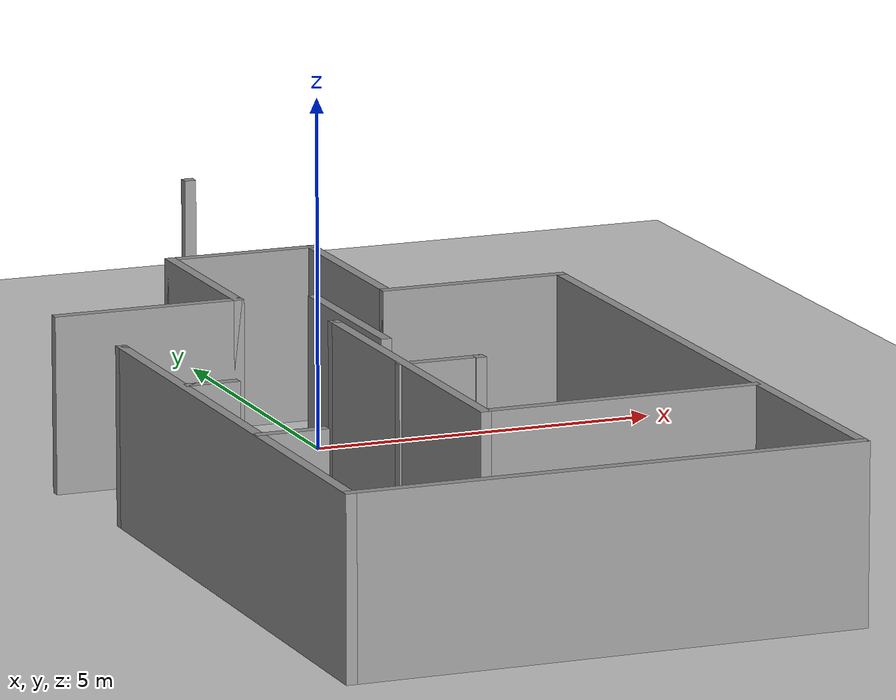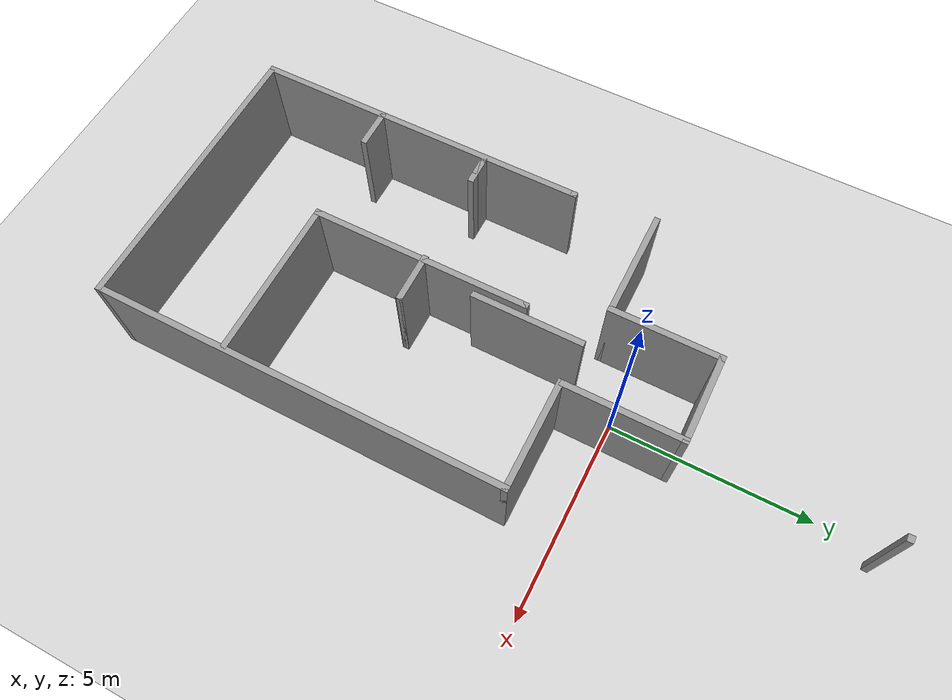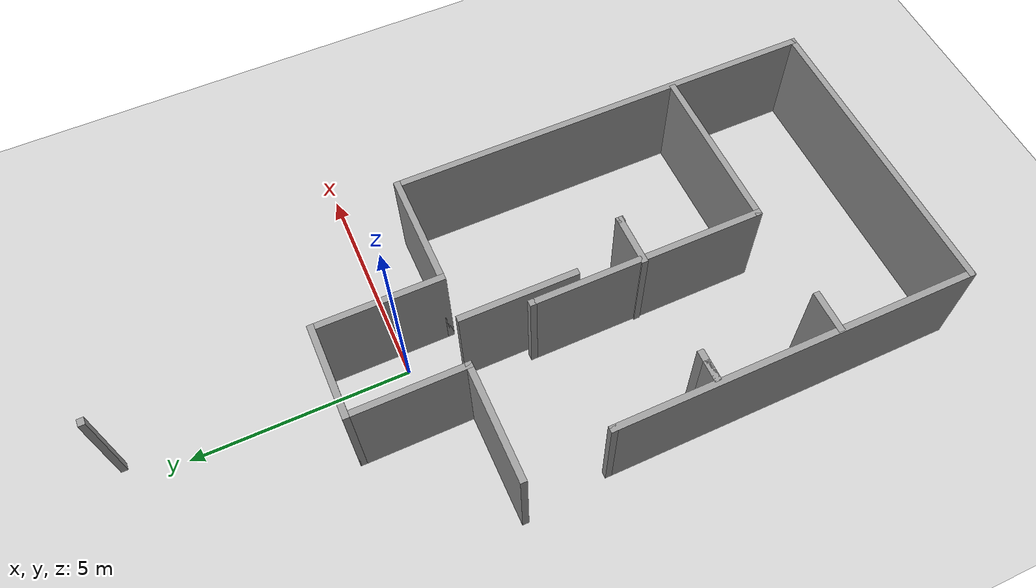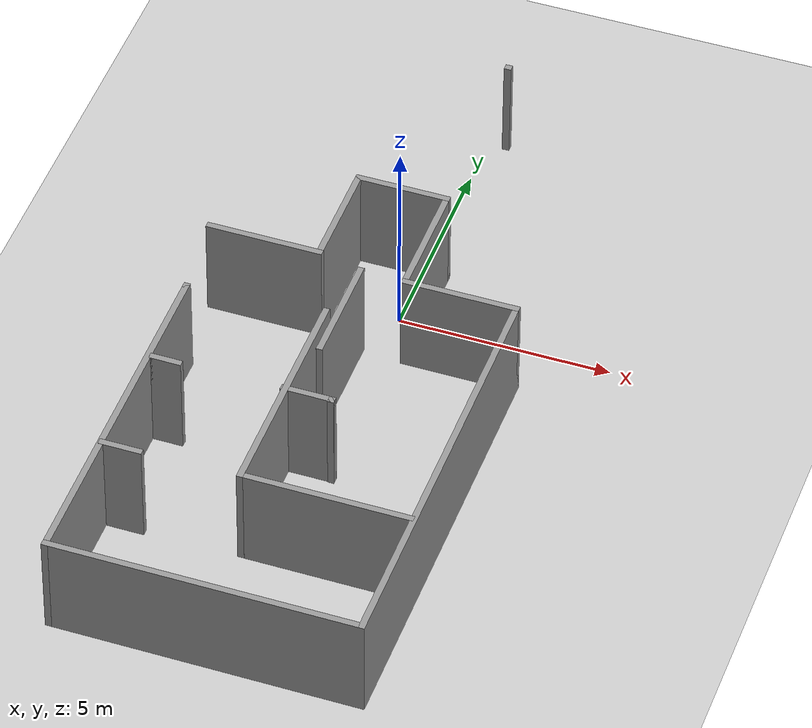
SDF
<sdf version="1.6">
 <world name="default">
  <scene><ambient>0.4 0.4 0.4 1</ambient><background>0.7 0.7 0.7 1</background><shadows>1</shadows></scene>
  <light name="sun" type="directional">
   <pose>0 0 10 0 -0 0</pose>
   <diffuse>0.8 0.8 0.8 1</diffuse>
   <specular>0.2 0.2 0.2 1</specular>
   <attenuation>
    <range>1000</range>
    <constant>0.9</constant>
    <linear>0.01</linear>
    <quadratic>0.001</quadratic>
   </attenuation>
   <direction>-0.5 0.1 -0.9</direction>
  </light>
  <model name="ground_plane">
   <static>1</static>
   <link name="link">
    <collision name="collision">
     <geometry><plane><normal>0 0 1</normal><size>100 100</size></plane></geometry>
     <surface>
      <contact><collide_bitmask>65535</collide_bitmask></contact>
      <friction><ode><mu>100</mu><mu2>50</mu2></ode></friction>
     </surface>
    </collision>
    <visual name="visual">
     <cast_shadows>0</cast_shadows>
     <geometry><plane><normal>0 0 1</normal><size>100 100</size></plane></geometry>
     <material>
      <script><uri>file://media/materials/scripts/gazebo.material</uri><name>Gazebo/Grey</name></script>
     </material>
    </visual>
   </link>
  </model>
  <model name="Untitled">
   <pose>-0.5 -2.5 0 0 0 -1.57</pose>
   <link name="Wall_1">
    <collision name="Wall_1_Collision">
     <geometry><box><size>0.17 0.15 2.5</size></box></geometry>
     <pose>0 0 1.25 0 -0 0</pose>
    </collision>
    <visual name="Wall_1_Visual">
     <pose>0 0 1.25 0 -0 0</pose>
     <geometry><box><size>0.17 0.15 2.5</size></box></geometry>
     <material>
      <script><uri>file://media/materials/scripts/gazebo.material</uri><name>Gazebo/Grey</name></script>
      <ambient>0 0 0 1</ambient>
     </material>
     <meta><layer>0</layer></meta>
    </visual>
    <pose>-8.81 0.94 0 0 -0 -1.5708</pose>
   </link>
   <link name="Wall_10">
    <collision name="Wall_10_Collision">
     <geometry><box><size>10.25 0.15 2.5</size></box></geometry>
     <pose>0 0 1.25 0 -0 0</pose>
    </collision>
    <visual name="Wall_10_Visual">
     <pose>0 0 1.25 0 -0 0</pose>
     <geometry><box><size>10.25 0.15 2.5</size></box></geometry>
     <material>
      <script><uri>file://media/materials/scripts/gazebo.material</uri><name>Gazebo/Grey</name></script>
      <ambient>1 1 1 1</ambient>
     </material>
     <meta><layer>0</layer></meta>
    </visual>
    <pose>3.76 3.65 0 0 -0 0</pose>
   </link>
   <link name="Wall_11">
    <collision name="Wall_11_Collision">
     <geometry><box><size>7.25 0.15 2.5</size></box></geometry>
     <pose>0 0 1.25 0 -0 0</pose>
    </collision>
    <visual name="Wall_11_Visual">
     <pose>0 0 1.25 0 -0 0</pose>
     <geometry><box><size>7.25 0.15 2.5</size></box></geometry>
     <material>
      <script><uri>file://media/materials/scripts/gazebo.material</uri><name>Gazebo/Grey</name></script>
      <ambient>1 1 1 1</ambient>
     </material>
     <meta><layer>0</layer></meta>
    </visual>
    <pose>8.81 0.1 0 0 -0 -1.5708</pose>
   </link>
   <link name="Wall_12">
    <collision name="Wall_12_Collision">
     <geometry><box><size>8.5 0.15 2.5</size></box></geometry>
     <pose>0 0 1.25 0 -0 0</pose>
    </collision>
    <visual name="Wall_12_Visual">
     <pose>0 0 1.25 0 -0 0</pose>
     <geometry><box><size>8.5 0.15 2.5</size></box></geometry>
     <material>
      <script><uri>file://media/materials/scripts/gazebo.material</uri><name>Gazebo/Grey</name></script>
      <ambient>1 1 1 1</ambient>
     </material>
     <meta><layer>0</layer></meta>
    </visual>
    <pose>4.635 -3.45 0 0 -0 3.14159</pose>
   </link>
   <link name="Wall_13">
    <collision name="Wall_13_Collision">
     <geometry><box><size>0.15 0.15 2.5</size></box></geometry>
     <pose>0 0 1.25 0 -0 0</pose>
    </collision>
    <visual name="Wall_13_Visual">
     <pose>0 0 1.25 0 -0 0</pose>
     <geometry><box><size>0.15 0.15 2.5</size></box></geometry>
     <material>
      <script><uri>file://media/materials/scripts/gazebo.material</uri><name>Gazebo/Grey</name></script>
      <ambient>1 1 1 1</ambient>
     </material>
     <meta><layer>0</layer></meta>
    </visual>
    <pose>0.459999 -3.45 0 0 -0 0</pose>
   </link>
   <link name="Wall_15">
    <collision name="Wall_15_Collision">
     <geometry><box><size>4 0.15 2.5</size></box></geometry>
     <pose>0 0 1.25 0 -0 0</pose>
    </collision>
    <visual name="Wall_15_Visual">
     <pose>0 0 1.25 0 -0 0</pose>
     <geometry><box><size>4 0.15 2.5</size></box></geometry>
     <material>
      <script><uri>file://media/materials/scripts/gazebo.material</uri><name>Gazebo/Grey</name></script>
      <ambient>1 1 1 1</ambient>
     </material>
     <meta><layer>0</layer></meta>
    </visual>
    <pose>5.53257 1.6473 0 0 -0 -1.5708</pose>
   </link>
   <link name="Wall_16">
    <collision name="Wall_16_Collision">
     <geometry><box><size>5.5 0.15 2.5</size></box></geometry>
     <pose>0 0 1.25 0 -0 0</pose>
    </collision>
    <visual name="Wall_16_Visual">
     <pose>0 0 1.25 0 -0 0</pose>
     <geometry><box><size>5.5 0.15 2.5</size></box></geometry>
     <material>
      <script><uri>file://media/materials/scripts/gazebo.material</uri><name>Gazebo/Grey</name></script>
      <ambient>1 1 1 1</ambient>
     </material>
     <meta><layer>0</layer></meta>
    </visual>
    <pose>2.85757 -0.277703 0 0 -0 3.14159</pose>
   </link>
   <link name="Wall_17">
    <collision name="Wall_17_Collision">
     <geometry><box><size>0.15 0.15 2.5</size></box></geometry>
     <pose>0 0 1.25 0 -0 0</pose>
    </collision>
    <visual name="Wall_17_Visual">
     <pose>0 0 1.25 0 -0 0</pose>
     <geometry><box><size>0.15 0.15 2.5</size></box></geometry>
     <material>
      <script><uri>file://media/materials/scripts/gazebo.material</uri><name>Gazebo/Grey</name></script>
      <ambient>1 1 1 1</ambient>
     </material>
     <meta><layer>0</layer></meta>
    </visual>
    <pose>0.182568 -0.277703 0 0 -0 0</pose>
   </link>
   <link name="Wall_19">
    <collision name="Wall_19_Collision">
     <geometry><box><size>1.25 0.15 2.5</size></box></geometry>
     <pose>0 0 1.25 0 -0 0</pose>
    </collision>
    <visual name="Wall_19_Visual">
     <pose>0 0 1.25 0 -0 0</pose>
     <geometry><box><size>1.25 0.15 2.5</size></box></geometry>
     <material>
      <script><uri>file://media/materials/scripts/gazebo.material</uri><name>Gazebo/Grey</name></script>
      <ambient>1 1 1 1</ambient>
     </material>
     <meta><layer>0</layer></meta>
    </visual>
    <pose>2.73955 0.238668 0 0 -0 1.5708</pose>
   </link>
   <link name="Wall_20">
    <collision name="Wall_20_Collision">
     <geometry><box><size>0.16 0.15 2.5</size></box></geometry>
     <pose>0 0 1.25 0 -0 0</pose>
    </collision>
    <visual name="Wall_20_Visual">
     <pose>0 0 1.25 0 -0 0</pose>
     <geometry><box><size>0.16 0.15 2.5</size></box></geometry>
     <material>
      <script><uri>file://media/materials/scripts/gazebo.material</uri><name>Gazebo/Grey</name></script>
      <ambient>1 1 1 1</ambient>
     </material>
     <meta><layer>0</layer></meta>
    </visual>
    <pose>2.74455 0.788668 0 0 -0 0</pose>
   </link>
   <link name="Wall_21">
    <collision name="Wall_21_Collision">
     <geometry><box><size>0.16 0.15 2.5</size></box></geometry>
     <pose>0 0 1.25 0 -0 0</pose>
    </collision>
    <visual name="Wall_21_Visual">
     <pose>0 0 1.25 0 -0 0</pose>
     <geometry><box><size>0.16 0.15 2.5</size></box></geometry>
     <material>
      <script><uri>file://media/materials/scripts/gazebo.material</uri><name>Gazebo/Grey</name></script>
      <ambient>1 1 1 1</ambient>
     </material>
     <meta><layer>0</layer></meta>
    </visual>
    <pose>2.75455 0.788668 0 0 -0 0</pose>
   </link>
   <link name="Wall_23">
    <collision name="Wall_23_Collision">
     <geometry><box><size>0.5 0.15 2.5</size></box></geometry>
     <pose>0 0 1.25 0 -0 0</pose>
    </collision>
    <visual name="Wall_23_Visual">
     <pose>0 0 1.25 0 -0 0</pose>
     <geometry><box><size>0.5 0.15 2.5</size></box></geometry>
     <material>
      <script><uri>file://media/materials/scripts/gazebo.material</uri><name>Gazebo/Grey</name></script>
      <ambient>1 1 1 1</ambient>
     </material>
     <meta><layer>0</layer></meta>
    </visual>
    <pose>2.79275 -3.16875 0 0 -0 1.5708</pose>
   </link>
   <link name="Wall_25">
    <collision name="Wall_25_Collision">
     <geometry><box><size>1 0.15 2.5</size></box></geometry>
     <pose>0 0 1.25 0 -0 0</pose>
    </collision>
    <visual name="Wall_25_Visual">
     <pose>0 0 1.25 0 -0 0</pose>
     <geometry><box><size>1 0.15 2.5</size></box></geometry>
     <material>
      <script><uri>file://media/materials/scripts/gazebo.material</uri><name>Gazebo/Grey</name></script>
      <ambient>1 1 1 1</ambient>
     </material>
     <meta><layer>0</layer></meta>
    </visual>
    <pose>5.61237 -2.99856 0 0 -0 1.5708</pose>
   </link>
   <link name="Wall_27">
    <collision name="Wall_27_Collision">
     <geometry><box><size>0.75 0.15 2.5</size></box></geometry>
     <pose>0 0 1.25 0 -0 0</pose>
    </collision>
    <visual name="Wall_27_Visual">
     <pose>0 0 1.25 0 -0 0</pose>
     <geometry><box><size>0.75 0.15 2.5</size></box></geometry>
     <material>
      <script><uri>file://media/materials/scripts/gazebo.material</uri><name>Gazebo/Grey</name></script>
      <ambient>1 1 1 1</ambient>
     </material>
     <meta><layer>0</layer></meta>
    </visual>
    <pose>2.79275 -3.04375 0 0 -0 1.5708</pose>
   </link>
   <link name="Wall_4">
    <collision name="Wall_4_Collision">
     <geometry><box><size>2.25 0.15 2.5</size></box></geometry>
     <pose>0 0 1.25 0 -0 0</pose>
    </collision>
    <visual name="Wall_4_Visual">
     <pose>0 0 1.25 0 -0 0</pose>
     <geometry><box><size>2.25 0.15 2.5</size></box></geometry>
     <material>
      <script><uri>file://media/materials/scripts/gazebo.material</uri><name>Gazebo/Grey</name></script>
      <ambient>1 1 1 1</ambient>
     </material>
     <meta><layer>0</layer></meta>
    </visual>
    <pose>-4.14 -0 0 0 -0 -1.5708</pose>
   </link>
   <link name="Wall_5">
    <collision name="Wall_5_Collision">
     <geometry><box><size>2.75 0.15 2.5</size></box></geometry>
     <pose>0 0 1.25 0 -0 0</pose>
    </collision>
    <visual name="Wall_5_Visual">
     <pose>0 0 1.25 0 -0 0</pose>
     <geometry><box><size>2.75 0.15 2.5</size></box></geometry>
     <material>
      <script><uri>file://media/materials/scripts/gazebo.material</uri><name>Gazebo/Grey</name></script>
      <ambient>1 1 1 1</ambient>
     </material>
     <meta><layer>0</layer></meta>
    </visual>
    <pose>-2.84 -1.05 0 0 -0 0</pose>
   </link>
   <link name="Wall_6">
    <collision name="Wall_6_Collision">
     <geometry><box><size>2.75 0.15 2.5</size></box></geometry>
     <pose>0 0 1.25 0 -0 0</pose>
    </collision>
    <visual name="Wall_6_Visual">
     <pose>0 0 1.25 0 -0 0</pose>
     <geometry><box><size>2.75 0.15 2.5</size></box></geometry>
     <material>
      <script><uri>file://media/materials/scripts/gazebo.material</uri><name>Gazebo/Grey</name></script>
      <ambient>1 1 1 1</ambient>
     </material>
     <meta><layer>0</layer></meta>
    </visual>
    <pose>-1.54 -2.35 0 0 -0 -1.5708</pose>
   </link>
   <link name="Wall_8">
    <collision name="Wall_8_Collision">
     <geometry><box><size>3 0.15 2.5</size></box></geometry>
     <pose>0 0 1.25 0 -0 0</pose>
    </collision>
    <visual name="Wall_8_Visual">
     <pose>0 0 1.25 0 -0 0</pose>
     <geometry><box><size>3 0.15 2.5</size></box></geometry>
     <material>
      <script><uri>file://media/materials/scripts/gazebo.material</uri><name>Gazebo/Grey</name></script>
      <ambient>1 1 1 1</ambient>
     </material>
     <meta><layer>0</layer></meta>
    </visual>
    <pose>-2.715 1.05 0 0 -0 0</pose>
   </link>
   <link name="Wall_9">
    <collision name="Wall_9_Collision">
     <geometry><box><size>2.75 0.15 2.5</size></box></geometry>
     <pose>0 0 1.25 0 -0 0</pose>
    </collision>
    <visual name="Wall_9_Visual">
     <pose>0 0 1.25 0 -0 0</pose>
     <geometry><box><size>2.75 0.15 2.5</size></box></geometry>
     <material>
      <script><uri>file://media/materials/scripts/gazebo.material</uri><name>Gazebo/Grey</name></script>
      <ambient>1 1 1 1</ambient>
     </material>
     <meta><layer>0</layer></meta>
    </visual>
    <pose>-1.29 2.35 0 0 -0 1.5708</pose>
   </link>
   <link name="Wall_0">
    <collision name="Wall_0_Collision">
     <geometry><box><size>2.75 0.15 2.5</size></box></geometry>
     <pose>0 0 1.25 0 -0 0</pose>
    </collision>
    <visual name="Wall_0_Visual">
     <pose>0 0 1.25 0 -0 0</pose>
     <geometry><box><size>2.75 0.15 2.5</size></box></geometry>
     <material>
      <script><uri>file://media/materials/scripts/gazebo.material</uri><name>Gazebo/Grey</name></script>
      <ambient>1 1 1 1</ambient>
     </material>
     <meta><layer>0</layer></meta>
    </visual>
   </link>
   <static>1</static>
  </model>
  <physics name="default_physics" default="0" type="ode">
   <real_time_update_rate>1000</real_time_update_rate>
   <max_step_size>0.001</max_step_size>
   <real_time_factor>1</real_time_factor>
   <ode>
    <solver>
     <type>quick</type>
     <iters>150</iters>
     <precon_iters>0</precon_iters>
     <sor>1.4</sor>
     <use_dynamic_moi_rescaling>1</use_dynamic_moi_rescaling>
    </solver>
    <constraints>
     <cfm>1e-05</cfm>
     <erp>0.2</erp>
     <contact_max_correcting_vel>2000</contact_max_correcting_vel>
     <contact_surface_layer>0.01</contact_surface_layer>
    </constraints>
   </ode>
  </physics>
  <gravity>0 0 -9.8</gravity>
  <magnetic_field>6e-06 2.3e-05 -4.2e-05</magnetic_field>
  <atmosphere type="adiabatic"/>
  <audio><device>default</device></audio>
  <spherical_coordinates>
   <surface_model>EARTH_WGS84</surface_model>
   <latitude_deg>0</latitude_deg>
   <longitude_deg>0</longitude_deg>
   <elevation>0</elevation>
   <heading_deg>0</heading_deg>
  </spherical_coordinates>
 </world>
</sdf>
